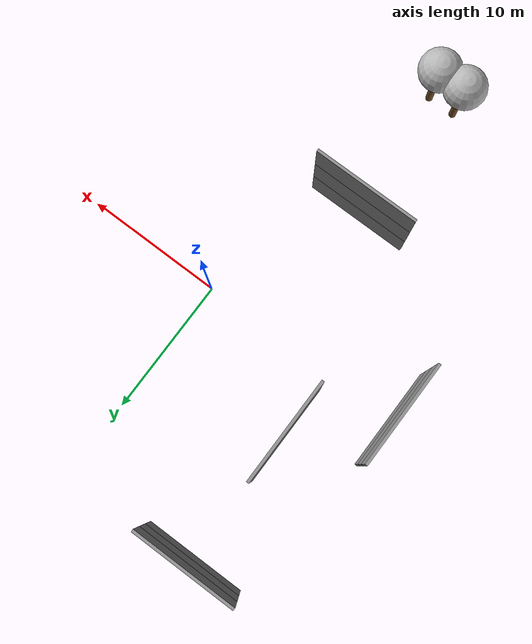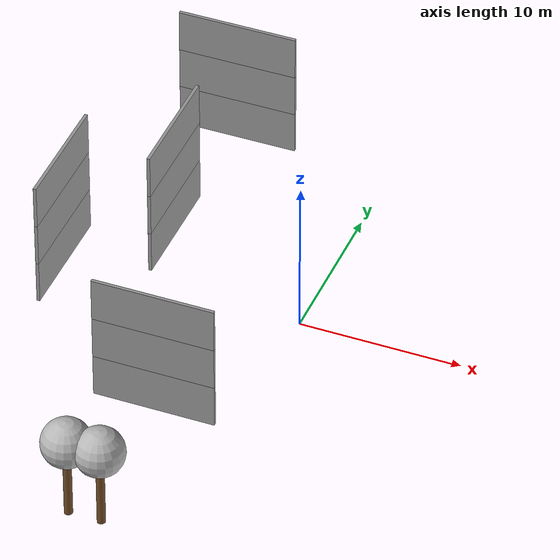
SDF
<sdf version="1.5">
 <world name="default">
  <model name="grey_wall_31">
   <static>1</static>
   <link name="link">
    <pose>0 0 1.4 0 -0 0</pose>
    <collision name="collision"><geometry><box><size>7.5 0.2 2.8</size></box></geometry></collision>
    <visual name="visual">
     <cast_shadows>0</cast_shadows>
     <geometry><box><size>7.5 0.2 2.8</size></box></geometry>
     <material>
      <script>
       <uri>model://grey_wall/materials/scripts</uri>
       <uri>model://grey_wall/materials/textures</uri>
       <name>vrc/grey_wall</name>
      </script>
     </material>
    </visual>
   </link>
   <pose>-5.0 -10.0 0 0 -0 0</pose>
  </model>
  <model name="grey_wall_32">
   <static>1</static>
   <link name="link">
    <pose>0 0 1.4 0 -0 0</pose>
    <collision name="collision"><geometry><box><size>7.5 0.2 2.8</size></box></geometry></collision>
    <visual name="visual">
     <cast_shadows>0</cast_shadows>
     <geometry><box><size>7.5 0.2 2.8</size></box></geometry>
     <material>
      <script>
       <uri>model://grey_wall/materials/scripts</uri>
       <uri>model://grey_wall/materials/textures</uri>
       <name>vrc/grey_wall</name>
      </script>
     </material>
    </visual>
   </link>
   <pose>-5.0 -10.0 2.8 0 -0 0</pose>
  </model>
  <model name="grey_wall_33">
   <static>1</static>
   <link name="link">
    <pose>0 0 1.4 0 -0 0</pose>
    <collision name="collision"><geometry><box><size>7.5 0.2 2.8</size></box></geometry></collision>
    <visual name="visual">
     <cast_shadows>0</cast_shadows>
     <geometry><box><size>7.5 0.2 2.8</size></box></geometry>
     <material>
      <script>
       <uri>model://grey_wall/materials/scripts</uri>
       <uri>model://grey_wall/materials/textures</uri>
       <name>vrc/grey_wall</name>
      </script>
     </material>
    </visual>
   </link>
   <pose>-5.0 -10.0 5.6 0 -0 0</pose>
  </model>
  <model name="grey_wall_51">
   <static>1</static>
   <link name="link">
    <pose>0 0 1.4 0 -0 0</pose>
    <collision name="collision"><geometry><box><size>7.5 0.2 2.8</size></box></geometry></collision>
    <visual name="visual">
     <cast_shadows>0</cast_shadows>
     <geometry><box><size>7.5 0.2 2.8</size></box></geometry>
     <material>
      <script>
       <uri>model://grey_wall/materials/scripts</uri>
       <uri>model://grey_wall/materials/textures</uri>
       <name>vrc/grey_wall</name>
      </script>
     </material>
    </visual>
   </link>
   <pose>-10.0 5.0 0 0 -0 1.57</pose>
  </model>
  <model name="grey_wall_52">
   <static>1</static>
   <link name="link">
    <pose>0 0 1.4 0 -0 0</pose>
    <collision name="collision"><geometry><box><size>7.5 0.2 2.8</size></box></geometry></collision>
    <visual name="visual">
     <cast_shadows>0</cast_shadows>
     <geometry><box><size>7.5 0.2 2.8</size></box></geometry>
     <material>
      <script>
       <uri>model://grey_wall/materials/scripts</uri>
       <uri>model://grey_wall/materials/textures</uri>
       <name>vrc/grey_wall</name>
      </script>
     </material>
    </visual>
   </link>
   <pose>-10.0 5.0 2.8 0 -0 1.57</pose>
  </model>
  <model name="grey_wall_53">
   <static>1</static>
   <link name="link">
    <pose>0 0 1.4 0 -0 0</pose>
    <collision name="collision"><geometry><box><size>7.5 0.2 2.8</size></box></geometry></collision>
    <visual name="visual">
     <cast_shadows>0</cast_shadows>
     <geometry><box><size>7.5 0.2 2.8</size></box></geometry>
     <material>
      <script>
       <uri>model://grey_wall/materials/scripts</uri>
       <uri>model://grey_wall/materials/textures</uri>
       <name>vrc/grey_wall</name>
      </script>
     </material>
    </visual>
   </link>
   <pose>-10.0 5.0 5.6 0 -0 1.57</pose>
  </model>
  <model name="grey_wall_71">
   <static>1</static>
   <link name="link">
    <pose>0 0 1.4 0 -0 0</pose>
    <collision name="collision"><geometry><box><size>7.5 0.2 2.8</size></box></geometry></collision>
    <visual name="visual">
     <cast_shadows>0</cast_shadows>
     <geometry><box><size>7.5 0.2 2.8</size></box></geometry>
     <material>
      <script>
       <uri>model://grey_wall/materials/scripts</uri>
       <uri>model://grey_wall/materials/textures</uri>
       <name>vrc/grey_wall</name>
      </script>
     </material>
    </visual>
   </link>
   <pose>-15.0 0.0 0 0 -0 1.57</pose>
  </model>
  <model name="grey_wall_72">
   <static>1</static>
   <link name="link">
    <pose>0 0 1.4 0 -0 0</pose>
    <collision name="collision"><geometry><box><size>7.5 0.2 2.8</size></box></geometry></collision>
    <visual name="visual">
     <cast_shadows>0</cast_shadows>
     <geometry><box><size>7.5 0.2 2.8</size></box></geometry>
     <material>
      <script>
       <uri>model://grey_wall/materials/scripts</uri>
       <uri>model://grey_wall/materials/textures</uri>
       <name>vrc/grey_wall</name>
      </script>
     </material>
    </visual>
   </link>
   <pose>-15.0 0.0 2.8 0 -0 1.57</pose>
  </model>
  <model name="grey_wall_73">
   <static>1</static>
   <link name="link">
    <pose>0 0 1.4 0 -0 0</pose>
    <collision name="collision"><geometry><box><size>7.5 0.2 2.8</size></box></geometry></collision>
    <visual name="visual">
     <cast_shadows>0</cast_shadows>
     <geometry><box><size>7.5 0.2 2.8</size></box></geometry>
     <material>
      <script>
       <uri>model://grey_wall/materials/scripts</uri>
       <uri>model://grey_wall/materials/textures</uri>
       <name>vrc/grey_wall</name>
      </script>
     </material>
    </visual>
   </link>
   <pose>-15.0 0.0 5.6 0 -0 1.57</pose>
  </model>
  <model name="grey_wall_81">
   <static>1</static>
   <link name="link">
    <pose>0 0 1.4 0 -0 0</pose>
    <collision name="collision"><geometry><box><size>7.5 0.2 2.8</size></box></geometry></collision>
    <visual name="visual">
     <cast_shadows>0</cast_shadows>
     <geometry><box><size>7.5 0.2 2.8</size></box></geometry>
     <material>
      <script>
       <uri>model://grey_wall/materials/scripts</uri>
       <uri>model://grey_wall/materials/textures</uri>
       <name>vrc/grey_wall</name>
      </script>
     </material>
    </visual>
   </link>
   <pose>-10.0 15.0 0 0 -0 0.0</pose>
  </model>
  <model name="grey_wall_82">
   <static>1</static>
   <link name="link">
    <pose>0 0 1.4 0 -0 0</pose>
    <collision name="collision"><geometry><box><size>7.5 0.2 2.8</size></box></geometry></collision>
    <visual name="visual">
     <cast_shadows>0</cast_shadows>
     <geometry><box><size>7.5 0.2 2.8</size></box></geometry>
     <material>
      <script>
       <uri>model://grey_wall/materials/scripts</uri>
       <uri>model://grey_wall/materials/textures</uri>
       <name>vrc/grey_wall</name>
      </script>
     </material>
    </visual>
   </link>
   <pose>-10.0 15.0 2.8 0 -0 0.0</pose>
  </model>
  <model name="grey_wall_83">
   <static>1</static>
   <link name="link">
    <pose>0 0 1.4 0 -0 0</pose>
    <collision name="collision"><geometry><box><size>7.5 0.2 2.8</size></box></geometry></collision>
    <visual name="visual">
     <cast_shadows>0</cast_shadows>
     <geometry><box><size>7.5 0.2 2.8</size></box></geometry>
     <material>
      <script>
       <uri>model://grey_wall/materials/scripts</uri>
       <uri>model://grey_wall/materials/textures</uri>
       <name>vrc/grey_wall</name>
      </script>
     </material>
    </visual>
   </link>
   <pose>-10.0 15.0 5.6 0 -0 0.0</pose>
  </model>
  <model name="tree_simple_7">
   <static>1</static>
   <link name="link">
    <pose>0 0 0.1 0 -0 0</pose>
    <collision name="collision_trunk">
     <pose>0 0 2 0 -0 0</pose>
     <geometry><cylinder><radius>0.25</radius><length>4</length></cylinder></geometry>
    </collision>
    <collision name="collision_treetop">
     <pose>0 0 5.2 0 -0 0</pose>
     <geometry><sphere><radius>1.5</radius></sphere></geometry>
    </collision>
    <visual name="trunk">
     <pose>0 0 2 0 -0 0</pose>
     <geometry><cylinder><radius>0.25</radius><length>4</length></cylinder></geometry>
     <material>
      <script>
       <uri>model://tree_simple/scripts</uri>
       <uri>model://tree_simple/materials/textures</uri>
       <name>TreeSimple/Trunk</name>
      </script>
     </material>
    </visual>
    <visual name="treetop">
     <pose>0 0 5.2 0 -0 0</pose>
     <geometry><sphere><radius>1.5</radius></sphere></geometry>
     <material>
      <script>
       <uri>model://tree_simple/scripts</uri>
       <uri>model://tree_simple/materials/textures</uri>
       <name>TreeSimple/Treetop</name>
      </script>
     </material>
    </visual>
   </link>
   <pose>-6 -20 0 0 0 0</pose>
  </model>
  <model name="tree_simple_8">
   <static>1</static>
   <link name="link">
    <pose>0 0 0.1 0 -0 0</pose>
    <collision name="collision_trunk">
     <pose>0 0 2 0 -0 0</pose>
     <geometry><cylinder><radius>0.25</radius><length>4</length></cylinder></geometry>
    </collision>
    <collision name="collision_treetop">
     <pose>0 0 5.2 0 -0 0</pose>
     <geometry><sphere><radius>1.5</radius></sphere></geometry>
    </collision>
    <visual name="trunk">
     <pose>0 0 2 0 -0 0</pose>
     <geometry><cylinder><radius>0.25</radius><length>4</length></cylinder></geometry>
     <material>
      <script>
       <uri>model://tree_simple/scripts</uri>
       <uri>model://tree_simple/materials/textures</uri>
       <name>TreeSimple/Trunk</name>
      </script>
     </material>
    </visual>
    <visual name="treetop">
     <pose>0 0 5.2 0 -0 0</pose>
     <geometry><sphere><radius>1.5</radius></sphere></geometry>
     <material>
      <script>
       <uri>model://tree_simple/scripts</uri>
       <uri>model://tree_simple/materials/textures</uri>
       <name>TreeSimple/Treetop</name>
      </script>
     </material>
    </visual>
   </link>
   <pose>-4 -20 0 0 0 0</pose>
  </model>
 </world>
</sdf>
